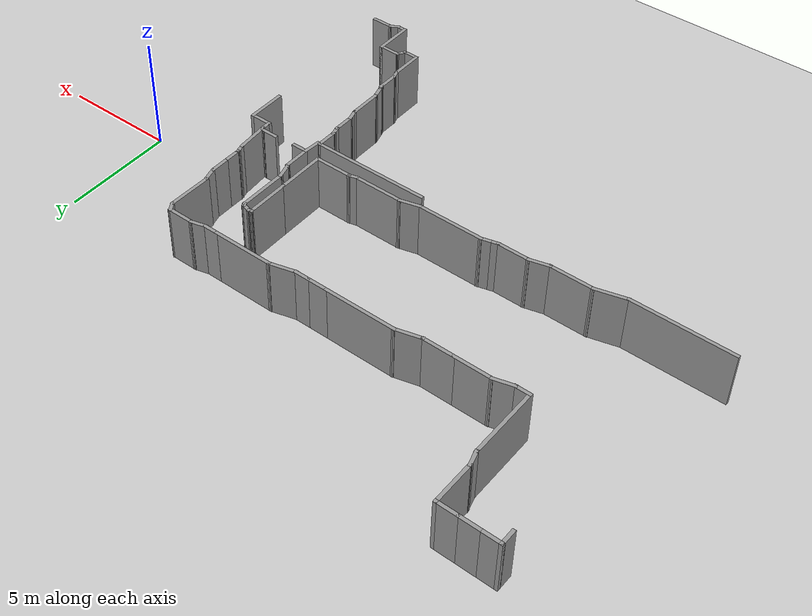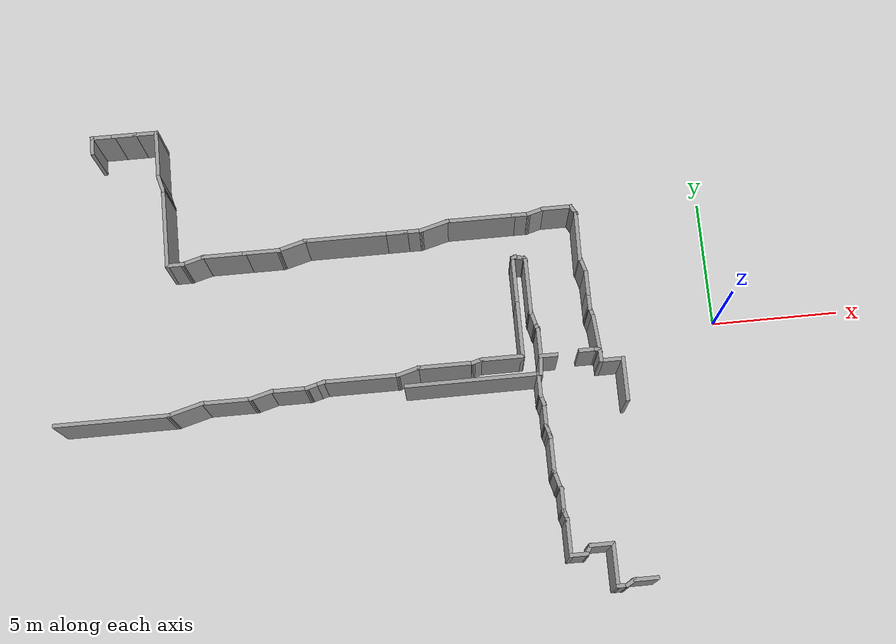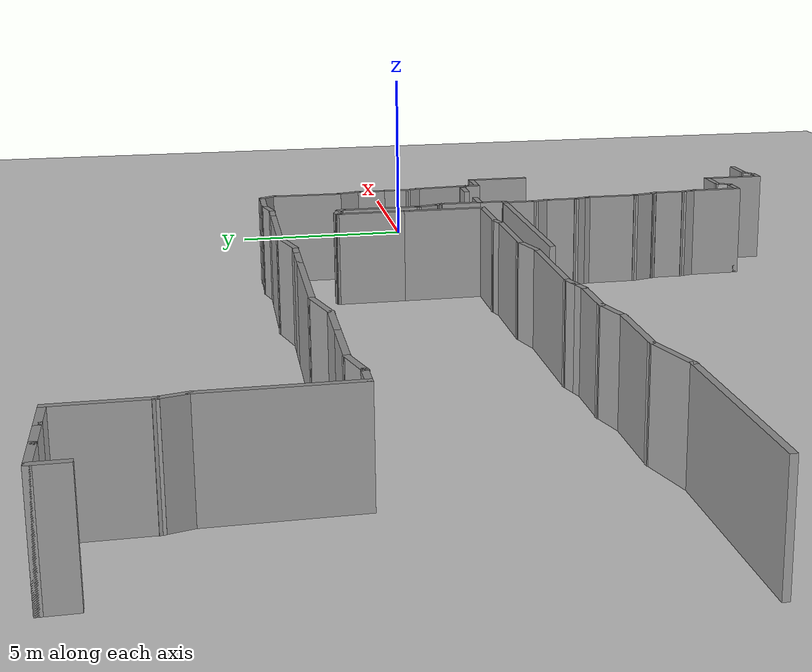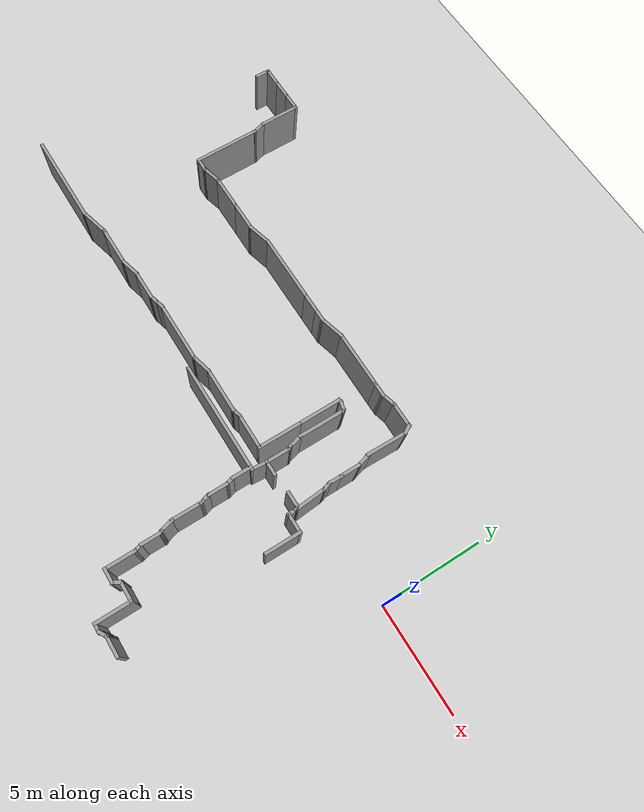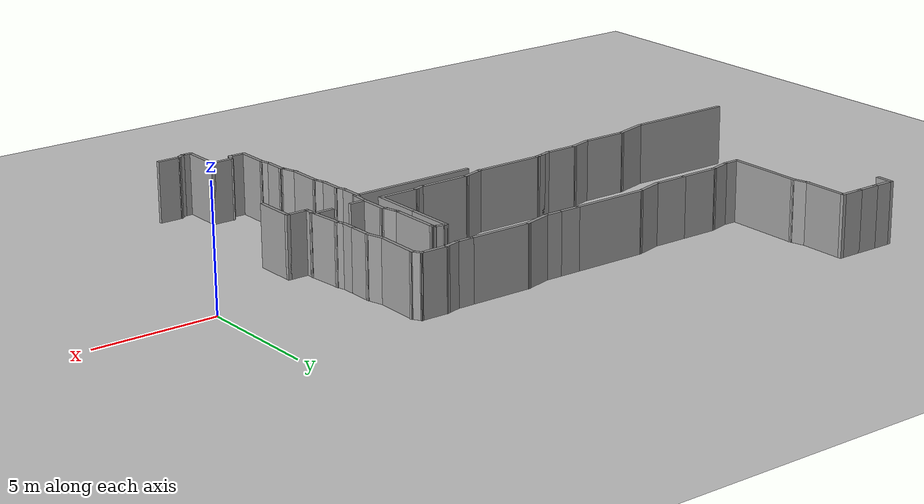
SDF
<sdf version="1.7">
 <world name="default">
  <model name="ground_plane">
   <static>1</static>
   <link name="link">
    <collision name="collision">
     <geometry><plane><normal>0 0 1</normal><size>100 100</size></plane></geometry>
     <surface><friction><ode><mu>100</mu><mu2>50</mu2></ode></friction></surface>
    </collision>
    <visual name="visual">
     <cast_shadows>0</cast_shadows>
     <geometry><plane><normal>0 0 1</normal><size>100 100</size></plane></geometry>
     <material>
      <script><uri>file://media/materials/scripts/gazebo.material</uri><name>Gazebo/Grey</name></script>
     </material>
    </visual>
   </link>
  </model>
  <model name="robovisor_env2">
   <pose>-12.9435 -0.483334 0 0 -0 3.14</pose>
   <link name="Wall_101">
    <collision name="Wall_101_Collision">
     <geometry><box><size>0.25 0.15 2.5</size></box></geometry>
     <pose>0 0 1.25 0 -0 0</pose>
    </collision>
    <visual name="Wall_101_Visual">
     <pose>0 0 1.25 0 -0 0</pose>
     <geometry><box><size>0.25 0.15 2.5</size></box></geometry>
     <material>
      <script><uri>file://media/materials/scripts/gazebo.material</uri><name>Gazebo/Grey</name></script>
      <ambient>1 1 1 1</ambient>
     </material>
     <meta><layer>0</layer></meta>
    </visual>
    <pose>-5.62434 1.40609 0 0 -0 3.14159</pose>
   </link>
   <link name="Wall_105">
    <collision name="Wall_105_Collision">
     <geometry><box><size>0.75 0.15 2.5</size></box></geometry>
     <pose>0 0 1.25 0 -0 0</pose>
    </collision>
    <visual name="Wall_105_Visual">
     <pose>0 0 1.25 0 -0 0</pose>
     <geometry><box><size>0.75 0.15 2.5</size></box></geometry>
     <material>
      <script><uri>file://media/materials/scripts/gazebo.material</uri><name>Gazebo/Grey</name></script>
      <ambient>1 1 1 1</ambient>
     </material>
     <meta><layer>0</layer></meta>
    </visual>
    <pose>-6.03532 0.716268 0 0 -0 0</pose>
   </link>
   <link name="Wall_110">
    <collision name="Wall_110_Collision">
     <geometry><box><size>0.842512 0.15 2.5</size></box></geometry>
     <pose>0 0 1.25 0 -0 0</pose>
    </collision>
    <visual name="Wall_110_Visual">
     <pose>0 0 1.25 0 -0 0</pose>
     <geometry><box><size>0.842512 0.15 2.5</size></box></geometry>
     <material>
      <script><uri>file://media/materials/scripts/gazebo.material</uri><name>Gazebo/Grey</name></script>
      <ambient>1 1 1 1</ambient>
     </material>
     <meta><layer>0</layer></meta>
    </visual>
    <pose>-5.70483 1.06118 0 0 -0 1.48262</pose>
   </link>
   <link name="Wall_112">
    <collision name="Wall_112_Collision">
     <geometry><box><size>0.75 0.15 2.5</size></box></geometry>
     <pose>0 0 1.25 0 -0 0</pose>
    </collision>
    <visual name="Wall_112_Visual">
     <pose>0 0 1.25 0 -0 0</pose>
     <geometry><box><size>0.75 0.15 2.5</size></box></geometry>
     <material>
      <script><uri>file://media/materials/scripts/gazebo.material</uri><name>Gazebo/Grey</name></script>
      <ambient>1 1 1 1</ambient>
     </material>
     <meta><layer>0</layer></meta>
    </visual>
    <pose>-7.58545 0.639279 0 0 -0 3.14159</pose>
   </link>
   <link name="Wall_113">
    <collision name="Wall_113_Collision">
     <geometry><box><size>0.25 0.15 2.5</size></box></geometry>
     <pose>0 0 1.25 0 -0 0</pose>
    </collision>
    <visual name="Wall_113_Visual">
     <pose>0 0 1.25 0 -0 0</pose>
     <geometry><box><size>0.25 0.15 2.5</size></box></geometry>
     <material>
      <script><uri>file://media/materials/scripts/gazebo.material</uri><name>Gazebo/Grey</name></script>
      <ambient>1 1 1 1</ambient>
     </material>
     <meta><layer>0</layer></meta>
    </visual>
    <pose>-7.93375 0.65222 0 0 -0 2.87979</pose>
   </link>
   <link name="Wall_114">
    <collision name="Wall_114_Collision">
     <geometry><box><size>0.25 0.15 2.5</size></box></geometry>
     <pose>0 0 1.25 0 -0 0</pose>
    </collision>
    <visual name="Wall_114_Visual">
     <pose>0 0 1.25 0 -0 0</pose>
     <geometry><box><size>0.25 0.15 2.5</size></box></geometry>
     <material>
      <script><uri>file://media/materials/scripts/gazebo.material</uri><name>Gazebo/Grey</name></script>
      <ambient>1 1 1 1</ambient>
     </material>
     <meta><layer>0</layer></meta>
    </visual>
    <pose>-8.00704 0.708463 0 0 -0 2.0944</pose>
   </link>
   <link name="Wall_115">
    <collision name="Wall_115_Collision">
     <geometry><box><size>0.5 0.15 2.5</size></box></geometry>
     <pose>0 0 1.25 0 -0 0</pose>
    </collision>
    <visual name="Wall_115_Visual">
     <pose>0 0 1.25 0 -0 0</pose>
     <geometry><box><size>0.5 0.15 2.5</size></box></geometry>
     <material>
      <script><uri>file://media/materials/scripts/gazebo.material</uri><name>Gazebo/Grey</name></script>
      <ambient>1 1 1 1</ambient>
     </material>
     <meta><layer>0</layer></meta>
    </visual>
    <pose>-8.03204 0.926764 0 0 -0 1.5708</pose>
   </link>
   <link name="Wall_116">
    <collision name="Wall_116_Collision">
     <geometry><box><size>1 0.15 2.5</size></box></geometry>
     <pose>0 0 1.25 0 -0 0</pose>
    </collision>
    <visual name="Wall_116_Visual">
     <pose>0 0 1.25 0 -0 0</pose>
     <geometry><box><size>1 0.15 2.5</size></box></geometry>
     <material>
      <script><uri>file://media/materials/scripts/gazebo.material</uri><name>Gazebo/Grey</name></script>
      <ambient>1 1 1 1</ambient>
     </material>
     <meta><layer>0</layer></meta>
    </visual>
    <pose>-8.45704 1.10176 0 0 -0 3.14159</pose>
   </link>
   <link name="Wall_117">
    <collision name="Wall_117_Collision">
     <geometry><box><size>1.75 0.15 2.5</size></box></geometry>
     <pose>0 0 1.25 0 -0 0</pose>
    </collision>
    <visual name="Wall_117_Visual">
     <pose>0 0 1.25 0 -0 0</pose>
     <geometry><box><size>1.75 0.15 2.5</size></box></geometry>
     <material>
      <script><uri>file://media/materials/scripts/gazebo.material</uri><name>Gazebo/Grey</name></script>
      <ambient>1 1 1 1</ambient>
     </material>
     <meta><layer>0</layer></meta>
    </visual>
    <pose>-8.88204 1.90176 0 0 -0 1.5708</pose>
   </link>
   <link name="Wall_151">
    <collision name="Wall_151_Collision">
     <geometry><box><size>1.25 0.15 2.5</size></box></geometry>
     <pose>0 0 1.25 0 -0 0</pose>
    </collision>
    <visual name="Wall_151_Visual">
     <pose>0 0 1.25 0 -0 0</pose>
     <geometry><box><size>1.25 0.15 2.5</size></box></geometry>
     <material>
      <script><uri>file://media/materials/scripts/gazebo.material</uri><name>Gazebo/Grey</name></script>
      <ambient>1 1 1 1</ambient>
     </material>
     <meta><layer>0</layer></meta>
    </visual>
    <pose>-5.73532 0.166268 0 0 -0 -1.5708</pose>
   </link>
   <link name="Wall_152">
    <collision name="Wall_152_Collision">
     <geometry><box><size>0.25 0.15 2.5</size></box></geometry>
     <pose>0 0 1.25 0 -0 0</pose>
    </collision>
    <visual name="Wall_152_Visual">
     <pose>0 0 1.25 0 -0 0</pose>
     <geometry><box><size>0.25 0.15 2.5</size></box></geometry>
     <material>
      <script><uri>file://media/materials/scripts/gazebo.material</uri><name>Gazebo/Grey</name></script>
      <ambient>1 1 1 1</ambient>
     </material>
     <meta><layer>0</layer></meta>
    </visual>
    <pose>-5.71032 -0.427033 0 0 -0 -1.0472</pose>
   </link>
   <link name="Wall_153">
    <collision name="Wall_153_Collision">
     <geometry><box><size>0.75 0.15 2.5</size></box></geometry>
     <pose>0 0 1.25 0 -0 0</pose>
    </collision>
    <visual name="Wall_153_Visual">
     <pose>0 0 1.25 0 -0 0</pose>
     <geometry><box><size>0.75 0.15 2.5</size></box></geometry>
     <material>
      <script><uri>file://media/materials/scripts/gazebo.material</uri><name>Gazebo/Grey</name></script>
      <ambient>1 1 1 1</ambient>
     </material>
     <meta><layer>0</layer></meta>
    </visual>
    <pose>-5.60768 -0.760112 0 0 -0 -1.309</pose>
   </link>
   <link name="Wall_154">
    <collision name="Wall_154_Collision">
     <geometry><box><size>2.25 0.15 2.5</size></box></geometry>
     <pose>0 0 1.25 0 -0 0</pose>
    </collision>
    <visual name="Wall_154_Visual">
     <pose>0 0 1.25 0 -0 0</pose>
     <geometry><box><size>2.25 0.15 2.5</size></box></geometry>
     <material>
      <script><uri>file://media/materials/scripts/gazebo.material</uri><name>Gazebo/Grey</name></script>
      <ambient>1 1 1 1</ambient>
     </material>
     <meta><layer>0</layer></meta>
    </visual>
    <pose>-5.53003 -2.09989 0 0 -0 -1.5708</pose>
   </link>
   <link name="Wall_155">
    <collision name="Wall_155_Collision">
     <geometry><box><size>0.25 0.15 2.5</size></box></geometry>
     <pose>0 0 1.25 0 -0 0</pose>
    </collision>
    <visual name="Wall_155_Visual">
     <pose>0 0 1.25 0 -0 0</pose>
     <geometry><box><size>0.25 0.15 2.5</size></box></geometry>
     <material>
      <script><uri>file://media/materials/scripts/gazebo.material</uri><name>Gazebo/Grey</name></script>
      <ambient>1 1 1 1</ambient>
     </material>
     <meta><layer>0</layer></meta>
    </visual>
    <pose>-5.50503 -3.19319 0 0 -0 -1.0472</pose>
   </link>
   <link name="Wall_156">
    <collision name="Wall_156_Collision">
     <geometry><box><size>0.5 0.15 2.5</size></box></geometry>
     <pose>0 0 1.25 0 -0 0</pose>
    </collision>
    <visual name="Wall_156_Visual">
     <pose>0 0 1.25 0 -0 0</pose>
     <geometry><box><size>0.5 0.15 2.5</size></box></geometry>
     <material>
      <script><uri>file://media/materials/scripts/gazebo.material</uri><name>Gazebo/Grey</name></script>
      <ambient>1 1 1 1</ambient>
     </material>
     <meta><layer>0</layer></meta>
    </visual>
    <pose>-5.311 -3.28179 0 0 -0 -0.261799</pose>
   </link>
   <link name="Wall_157">
    <collision name="Wall_157_Collision">
     <geometry><box><size>0.25 0.15 2.5</size></box></geometry>
     <pose>0 0 1.25 0 -0 0</pose>
    </collision>
    <visual name="Wall_157_Visual">
     <pose>0 0 1.25 0 -0 0</pose>
     <geometry><box><size>0.25 0.15 2.5</size></box></geometry>
     <material>
      <script><uri>file://media/materials/scripts/gazebo.material</uri><name>Gazebo/Grey</name></script>
      <ambient>1 1 1 1</ambient>
     </material>
     <meta><layer>0</layer></meta>
    </visual>
    <pose>-5.09366 -3.31414 0 0 -0 0.261799</pose>
   </link>
   <link name="Wall_158">
    <collision name="Wall_158_Collision">
     <geometry><box><size>0.15 0.15 2.5</size></box></geometry>
     <pose>0 0 1.25 0 -0 0</pose>
    </collision>
    <visual name="Wall_158_Visual">
     <pose>0 0 1.25 0 -0 0</pose>
     <geometry><box><size>0.15 0.15 2.5</size></box></geometry>
     <material>
      <script><uri>file://media/materials/scripts/gazebo.material</uri><name>Gazebo/Grey</name></script>
      <ambient>1 1 1 1</ambient>
     </material>
     <meta><layer>0</layer></meta>
    </visual>
    <pose>-5.04537 -3.3012 0 0 -0 0</pose>
   </link>
   <link name="Wall_159">
    <collision name="Wall_159_Collision">
     <geometry><box><size>0.15 0.15 2.5</size></box></geometry>
     <pose>0 0 1.25 0 -0 0</pose>
    </collision>
    <visual name="Wall_159_Visual">
     <pose>0 0 1.25 0 -0 0</pose>
     <geometry><box><size>0.15 0.15 2.5</size></box></geometry>
     <material>
      <script><uri>file://media/materials/scripts/gazebo.material</uri><name>Gazebo/Grey</name></script>
      <ambient>1 1 1 1</ambient>
     </material>
     <meta><layer>0</layer></meta>
    </visual>
    <pose>-5.04537 -3.3012 0 0 -0 0</pose>
   </link>
   <link name="Wall_160">
    <collision name="Wall_160_Collision">
     <geometry><box><size>2 0.15 2.5</size></box></geometry>
     <pose>0 0 1.25 0 -0 0</pose>
    </collision>
    <visual name="Wall_160_Visual">
     <pose>0 0 1.25 0 -0 0</pose>
     <geometry><box><size>2 0.15 2.5</size></box></geometry>
     <material>
      <script><uri>file://media/materials/scripts/gazebo.material</uri><name>Gazebo/Grey</name></script>
      <ambient>1 1 1 1</ambient>
     </material>
     <meta><layer>0</layer></meta>
    </visual>
    <pose>-5.04537 -2.3762 0 0 -0 1.5708</pose>
   </link>
   <link name="Wall_161">
    <collision name="Wall_161_Collision">
     <geometry><box><size>2.25 0.15 2.5</size></box></geometry>
     <pose>0 0 1.25 0 -0 0</pose>
    </collision>
    <visual name="Wall_161_Visual">
     <pose>0 0 1.25 0 -0 0</pose>
     <geometry><box><size>2.25 0.15 2.5</size></box></geometry>
     <material>
      <script><uri>file://media/materials/scripts/gazebo.material</uri><name>Gazebo/Grey</name></script>
      <ambient>1 1 1 1</ambient>
     </material>
     <meta><layer>0</layer></meta>
    </visual>
    <pose>-5.04537 -0.401197 0 0 -0 1.5708</pose>
   </link>
   <link name="Wall_162">
    <collision name="Wall_162_Collision">
     <geometry><box><size>1.75 0.15 2.5</size></box></geometry>
     <pose>0 0 1.25 0 -0 0</pose>
    </collision>
    <visual name="Wall_162_Visual">
     <pose>0 0 1.25 0 -0 0</pose>
     <geometry><box><size>1.75 0.15 2.5</size></box></geometry>
     <material>
      <script><uri>file://media/materials/scripts/gazebo.material</uri><name>Gazebo/Grey</name></script>
      <ambient>1 1 1 1</ambient>
     </material>
     <meta><layer>0</layer></meta>
    </visual>
    <pose>-4.24536 0.648803 0 0 -0 0</pose>
   </link>
   <link name="Wall_163">
    <collision name="Wall_163_Collision">
     <geometry><box><size>0.5 0.15 2.5</size></box></geometry>
     <pose>0 0 1.25 0 -0 0</pose>
    </collision>
    <visual name="Wall_163_Visual">
     <pose>0 0 1.25 0 -0 0</pose>
     <geometry><box><size>0.5 0.15 2.5</size></box></geometry>
     <material>
      <script><uri>file://media/materials/scripts/gazebo.material</uri><name>Gazebo/Grey</name></script>
      <ambient>1 1 1 1</ambient>
     </material>
     <meta><layer>0</layer></meta>
    </visual>
    <pose>-3.27633 0.694096 0 0 -0 0.261799</pose>
   </link>
   <link name="Wall_164">
    <collision name="Wall_164_Collision">
     <geometry><box><size>2.25 0.15 2.5</size></box></geometry>
     <pose>0 0 1.25 0 -0 0</pose>
    </collision>
    <visual name="Wall_164_Visual">
     <pose>0 0 1.25 0 -0 0</pose>
     <geometry><box><size>2.25 0.15 2.5</size></box></geometry>
     <material>
      <script><uri>file://media/materials/scripts/gazebo.material</uri><name>Gazebo/Grey</name></script>
      <ambient>1 1 1 1</ambient>
     </material>
     <meta><layer>0</layer></meta>
    </visual>
    <pose>-2.05729 0.73939 0 0 -0 0</pose>
   </link>
   <link name="Wall_165">
    <collision name="Wall_165_Collision">
     <geometry><box><size>1 0.15 2.5</size></box></geometry>
     <pose>0 0 1.25 0 -0 0</pose>
    </collision>
    <visual name="Wall_165_Visual">
     <pose>0 0 1.25 0 -0 0</pose>
     <geometry><box><size>1 0.15 2.5</size></box></geometry>
     <material>
      <script><uri>file://media/materials/scripts/gazebo.material</uri><name>Gazebo/Grey</name></script>
      <ambient>1 1 1 1</ambient>
     </material>
     <meta><layer>0</layer></meta>
    </visual>
    <pose>-0.596773 0.849388 0 0 -0 0.261799</pose>
   </link>
   <link name="Wall_166">
    <collision name="Wall_166_Collision">
     <geometry><box><size>3 0.15 2.5</size></box></geometry>
     <pose>0 0 1.25 0 -0 0</pose>
    </collision>
    <visual name="Wall_166_Visual">
     <pose>0 0 1.25 0 -0 0</pose>
     <geometry><box><size>3 0.15 2.5</size></box></geometry>
     <material>
      <script><uri>file://media/materials/scripts/gazebo.material</uri><name>Gazebo/Grey</name></script>
      <ambient>1 1 1 1</ambient>
     </material>
     <meta><layer>0</layer></meta>
    </visual>
    <pose>1.23875 0.959386 0 0 -0 0</pose>
   </link>
   <link name="Wall_167">
    <collision name="Wall_167_Collision">
     <geometry><box><size>0.5 0.15 2.5</size></box></geometry>
     <pose>0 0 1.25 0 -0 0</pose>
    </collision>
    <visual name="Wall_167_Visual">
     <pose>0 0 1.25 0 -0 0</pose>
     <geometry><box><size>0.5 0.15 2.5</size></box></geometry>
     <material>
      <script><uri>file://media/materials/scripts/gazebo.material</uri><name>Gazebo/Grey</name></script>
      <ambient>1 1 1 1</ambient>
     </material>
     <meta><layer>0</layer></meta>
    </visual>
    <pose>2.83278 1.00468 0 0 -0 0.261799</pose>
   </link>
   <link name="Wall_168">
    <collision name="Wall_168_Collision">
     <geometry><box><size>0.5 0.15 2.5</size></box></geometry>
     <pose>0 0 1.25 0 -0 0</pose>
    </collision>
    <visual name="Wall_168_Visual">
     <pose>0 0 1.25 0 -0 0</pose>
     <geometry><box><size>0.5 0.15 2.5</size></box></geometry>
     <material>
      <script><uri>file://media/materials/scripts/gazebo.material</uri><name>Gazebo/Grey</name></script>
      <ambient>1 1 1 1</ambient>
     </material>
     <meta><layer>0</layer></meta>
    </visual>
    <pose>3.17086 1.09527 0 0 -0 0.261799</pose>
   </link>
   <link name="Wall_169">
    <collision name="Wall_169_Collision">
     <geometry><box><size>1.5 0.15 2.5</size></box></geometry>
     <pose>0 0 1.25 0 -0 0</pose>
    </collision>
    <visual name="Wall_169_Visual">
     <pose>0 0 1.25 0 -0 0</pose>
     <geometry><box><size>1.5 0.15 2.5</size></box></geometry>
     <material>
      <script><uri>file://media/materials/scripts/gazebo.material</uri><name>Gazebo/Grey</name></script>
      <ambient>1 1 1 1</ambient>
     </material>
     <meta><layer>0</layer></meta>
    </visual>
    <pose>4.01489 1.14056 0 0 -0 0</pose>
   </link>
   <link name="Wall_171">
    <collision name="Wall_171_Collision">
     <geometry><box><size>1 0.15 2.5</size></box></geometry>
     <pose>0 0 1.25 0 -0 0</pose>
    </collision>
    <visual name="Wall_171_Visual">
     <pose>0 0 1.25 0 -0 0</pose>
     <geometry><box><size>1 0.15 2.5</size></box></geometry>
     <material>
      <script><uri>file://media/materials/scripts/gazebo.material</uri><name>Gazebo/Grey</name></script>
      <ambient>1 1 1 1</ambient>
     </material>
     <meta><layer>0</layer></meta>
    </visual>
    <pose>5.10041 1.25056 0 0 -0 0.261799</pose>
   </link>
   <link name="Wall_172">
    <collision name="Wall_172_Collision">
     <geometry><box><size>2 0.15 2.5</size></box></geometry>
     <pose>0 0 1.25 0 -0 0</pose>
    </collision>
    <visual name="Wall_172_Visual">
     <pose>0 0 1.25 0 -0 0</pose>
     <geometry><box><size>2 0.15 2.5</size></box></geometry>
     <material>
      <script><uri>file://media/materials/scripts/gazebo.material</uri><name>Gazebo/Grey</name></script>
      <ambient>1 1 1 1</ambient>
     </material>
     <meta><layer>0</layer></meta>
    </visual>
    <pose>6.43593 1.36055 0 0 -0 0</pose>
   </link>
   <link name="Wall_173">
    <collision name="Wall_173_Collision">
     <geometry><box><size>1.5 0.15 2.5</size></box></geometry>
     <pose>0 0 1.25 0 -0 0</pose>
    </collision>
    <visual name="Wall_173_Visual">
     <pose>0 0 1.25 0 -0 0</pose>
     <geometry><box><size>1.5 0.15 2.5</size></box></geometry>
     <material>
      <script><uri>file://media/materials/scripts/gazebo.material</uri><name>Gazebo/Grey</name></script>
      <ambient>1 1 1 1</ambient>
     </material>
     <meta><layer>0</layer></meta>
    </visual>
    <pose>8.01293 1.53526 0 0 -0 0.261799</pose>
   </link>
   <link name="Wall_174">
    <collision name="Wall_174_Collision">
     <geometry><box><size>4.5 0.15 2.5</size></box></geometry>
     <pose>0 0 1.25 0 -0 0</pose>
    </collision>
    <visual name="Wall_174_Visual">
     <pose>0 0 1.25 0 -0 0</pose>
     <geometry><box><size>4.5 0.15 2.5</size></box></geometry>
     <material>
      <script><uri>file://media/materials/scripts/gazebo.material</uri><name>Gazebo/Grey</name></script>
      <ambient>1 1 1 1</ambient>
     </material>
     <meta><layer>0</layer></meta>
    </visual>
    <pose>10.8399 1.70996 0 0 -0 0</pose>
   </link>
   <link name="Wall_276">
    <collision name="Wall_276_Collision">
     <geometry><box><size>0.75 0.15 2.5</size></box></geometry>
     <pose>0 0 1.25 0 -0 0</pose>
    </collision>
    <visual name="Wall_276_Visual">
     <pose>0 0 1.25 0 -0 0</pose>
     <geometry><box><size>0.75 0.15 2.5</size></box></geometry>
     <material>
      <script><uri>file://media/materials/scripts/gazebo.material</uri><name>Gazebo/Grey</name></script>
      <ambient>1 1 1 1</ambient>
     </material>
     <meta><layer>0</layer></meta>
    </visual>
    <pose>11.113 -9.46316 0 0 -0 -1.5708</pose>
   </link>
   <link name="Wall_277">
    <collision name="Wall_277_Collision">
     <geometry><box><size>0.15 0.15 2.5</size></box></geometry>
     <pose>0 0 1.25 0 -0 0</pose>
    </collision>
    <visual name="Wall_277_Visual">
     <pose>0 0 1.25 0 -0 0</pose>
     <geometry><box><size>0.15 0.15 2.5</size></box></geometry>
     <material>
      <script><uri>file://media/materials/scripts/gazebo.material</uri><name>Gazebo/Grey</name></script>
      <ambient>1 1 1 1</ambient>
     </material>
     <meta><layer>0</layer></meta>
    </visual>
    <pose>11.113 -9.76315 0 0 -0 0</pose>
   </link>
   <link name="Wall_278">
    <collision name="Wall_278_Collision">
     <geometry><box><size>1 0.15 2.5</size></box></geometry>
     <pose>0 0 1.25 0 -0 0</pose>
    </collision>
    <visual name="Wall_278_Visual">
     <pose>0 0 1.25 0 -0 0</pose>
     <geometry><box><size>1 0.15 2.5</size></box></geometry>
     <material>
      <script><uri>file://media/materials/scripts/gazebo.material</uri><name>Gazebo/Grey</name></script>
      <ambient>1 1 1 1</ambient>
     </material>
     <meta><layer>0</layer></meta>
    </visual>
    <pose>10.688 -9.76315 0 0 -0 3.14159</pose>
   </link>
   <link name="Wall_279">
    <collision name="Wall_279_Collision">
     <geometry><box><size>1 0.15 2.5</size></box></geometry>
     <pose>0 0 1.25 0 -0 0</pose>
    </collision>
    <visual name="Wall_279_Visual">
     <pose>0 0 1.25 0 -0 0</pose>
     <geometry><box><size>1 0.15 2.5</size></box></geometry>
     <material>
      <script><uri>file://media/materials/scripts/gazebo.material</uri><name>Gazebo/Grey</name></script>
      <ambient>1 1 1 1</ambient>
     </material>
     <meta><layer>0</layer></meta>
    </visual>
    <pose>9.83799 -9.76315 0 0 -0 3.14159</pose>
   </link>
   <link name="Wall_280">
    <collision name="Wall_280_Collision">
     <geometry><box><size>1 0.15 2.5</size></box></geometry>
     <pose>0 0 1.25 0 -0 0</pose>
    </collision>
    <visual name="Wall_280_Visual">
     <pose>0 0 1.25 0 -0 0</pose>
     <geometry><box><size>1 0.15 2.5</size></box></geometry>
     <material>
      <script><uri>file://media/materials/scripts/gazebo.material</uri><name>Gazebo/Grey</name></script>
      <ambient>1 1 1 1</ambient>
     </material>
     <meta><layer>0</layer></meta>
    </visual>
    <pose>8.98799 -9.76315 0 0 -0 3.14159</pose>
   </link>
   <link name="Wall_281">
    <collision name="Wall_281_Collision">
     <geometry><box><size>2 0.15 2.5</size></box></geometry>
     <pose>0 0 1.25 0 -0 0</pose>
    </collision>
    <visual name="Wall_281_Visual">
     <pose>0 0 1.25 0 -0 0</pose>
     <geometry><box><size>2 0.15 2.5</size></box></geometry>
     <material>
      <script><uri>file://media/materials/scripts/gazebo.material</uri><name>Gazebo/Grey</name></script>
      <ambient>1 1 1 1</ambient>
     </material>
     <meta><layer>0</layer></meta>
    </visual>
    <pose>8.56299 -8.83816 0 0 -0 1.5708</pose>
   </link>
   <link name="Wall_282">
    <collision name="Wall_282_Collision">
     <geometry><box><size>0.75 0.15 2.5</size></box></geometry>
     <pose>0 0 1.25 0 -0 0</pose>
    </collision>
    <visual name="Wall_282_Visual">
     <pose>0 0 1.25 0 -0 0</pose>
     <geometry><box><size>0.75 0.15 2.5</size></box></geometry>
     <material>
      <script><uri>file://media/materials/scripts/gazebo.material</uri><name>Gazebo/Grey</name></script>
      <ambient>1 1 1 1</ambient>
     </material>
     <meta><layer>0</layer></meta>
    </visual>
    <pose>8.48534 -7.62338 0 0 -0 1.8326</pose>
   </link>
   <link name="Wall_283">
    <collision name="Wall_283_Collision">
     <geometry><box><size>3.25 0.15 2.5</size></box></geometry>
     <pose>0 0 1.25 0 -0 0</pose>
    </collision>
    <visual name="Wall_283_Visual">
     <pose>0 0 1.25 0 -0 0</pose>
     <geometry><box><size>3.25 0.15 2.5</size></box></geometry>
     <material>
      <script><uri>file://media/materials/scripts/gazebo.material</uri><name>Gazebo/Grey</name></script>
      <ambient>1 1 1 1</ambient>
     </material>
     <meta><layer>0</layer></meta>
    </visual>
    <pose>8.4077 -5.7836 0 0 -0 1.5708</pose>
   </link>
   <link name="Wall_284">
    <collision name="Wall_284_Collision">
     <geometry><box><size>0.75 0.15 2.5</size></box></geometry>
     <pose>0 0 1.25 0 -0 0</pose>
    </collision>
    <visual name="Wall_284_Visual">
     <pose>0 0 1.25 0 -0 0</pose>
     <geometry><box><size>0.75 0.15 2.5</size></box></geometry>
     <material>
      <script><uri>file://media/materials/scripts/gazebo.material</uri><name>Gazebo/Grey</name></script>
      <ambient>1 1 1 1</ambient>
     </material>
     <meta><layer>0</layer></meta>
    </visual>
    <pose>8.10769 -4.2336 0 0 -0 3.14159</pose>
   </link>
   <link name="Wall_285">
    <collision name="Wall_285_Collision">
     <geometry><box><size>1 0.15 2.5</size></box></geometry>
     <pose>0 0 1.25 0 -0 0</pose>
    </collision>
    <visual name="Wall_285_Visual">
     <pose>0 0 1.25 0 -0 0</pose>
     <geometry><box><size>1 0.15 2.5</size></box></geometry>
     <material>
      <script><uri>file://media/materials/scripts/gazebo.material</uri><name>Gazebo/Grey</name></script>
      <ambient>1 1 1 1</ambient>
     </material>
     <meta><layer>0</layer></meta>
    </visual>
    <pose>7.39718 -4.3436 0 0 -0 -2.87979</pose>
   </link>
   <link name="Wall_286">
    <collision name="Wall_286_Collision">
     <geometry><box><size>1.75 0.15 2.5</size></box></geometry>
     <pose>0 0 1.25 0 -0 0</pose>
    </collision>
    <visual name="Wall_286_Visual">
     <pose>0 0 1.25 0 -0 0</pose>
     <geometry><box><size>1.75 0.15 2.5</size></box></geometry>
     <material>
      <script><uri>file://media/materials/scripts/gazebo.material</uri><name>Gazebo/Grey</name></script>
      <ambient>1 1 1 1</ambient>
     </material>
     <meta><layer>0</layer></meta>
    </visual>
    <pose>6.18666 -4.4536 0 0 -0 3.14159</pose>
   </link>
   <link name="Wall_288">
    <collision name="Wall_288_Collision">
     <geometry><box><size>1.5 0.15 2.5</size></box></geometry>
     <pose>0 0 1.25 0 -0 0</pose>
    </collision>
    <visual name="Wall_288_Visual">
     <pose>0 0 1.25 0 -0 0</pose>
     <geometry><box><size>1.5 0.15 2.5</size></box></geometry>
     <material>
      <script><uri>file://media/materials/scripts/gazebo.material</uri><name>Gazebo/Grey</name></script>
      <ambient>1 1 1 1</ambient>
     </material>
     <meta><layer>0</layer></meta>
    </visual>
    <pose>4.71166 -4.4536 0 0 -0 3.14159</pose>
   </link>
   <link name="Wall_289">
    <collision name="Wall_289_Collision">
     <geometry><box><size>1.25 0.15 2.5</size></box></geometry>
     <pose>0 0 1.25 0 -0 0</pose>
    </collision>
    <visual name="Wall_289_Visual">
     <pose>0 0 1.25 0 -0 0</pose>
     <geometry><box><size>1.25 0.15 2.5</size></box></geometry>
     <material>
      <script><uri>file://media/materials/scripts/gazebo.material</uri><name>Gazebo/Grey</name></script>
      <ambient>1 1 1 1</ambient>
     </material>
     <meta><layer>0</layer></meta>
    </visual>
    <pose>3.5054 -4.59595 0 0 -0 -2.87979</pose>
   </link>
   <link name="Wall_290">
    <collision name="Wall_290_Collision">
     <geometry><box><size>3.25 0.15 2.5</size></box></geometry>
     <pose>0 0 1.25 0 -0 0</pose>
    </collision>
    <visual name="Wall_290_Visual">
     <pose>0 0 1.25 0 -0 0</pose>
     <geometry><box><size>3.25 0.15 2.5</size></box></geometry>
     <material>
      <script><uri>file://media/materials/scripts/gazebo.material</uri><name>Gazebo/Grey</name></script>
      <ambient>1 1 1 1</ambient>
     </material>
     <meta><layer>0</layer></meta>
    </visual>
    <pose>1.42414 -4.7383 0 0 -0 3.14159</pose>
   </link>
   <link name="Wall_291">
    <collision name="Wall_291_Collision">
     <geometry><box><size>1 0.15 2.5</size></box></geometry>
     <pose>0 0 1.25 0 -0 0</pose>
    </collision>
    <visual name="Wall_291_Visual">
     <pose>0 0 1.25 0 -0 0</pose>
     <geometry><box><size>1 0.15 2.5</size></box></geometry>
     <material>
      <script><uri>file://media/materials/scripts/gazebo.material</uri><name>Gazebo/Grey</name></script>
      <ambient>1 1 1 1</ambient>
     </material>
     <meta><layer>0</layer></meta>
    </visual>
    <pose>-0.55086 -4.7383 0 0 -0 3.14159</pose>
   </link>
   <link name="Wall_292">
    <collision name="Wall_292_Collision">
     <geometry><box><size>0.75 0.15 2.5</size></box></geometry>
     <pose>0 0 1.25 0 -0 0</pose>
    </collision>
    <visual name="Wall_292_Visual">
     <pose>0 0 1.25 0 -0 0</pose>
     <geometry><box><size>0.75 0.15 2.5</size></box></geometry>
     <material>
      <script><uri>file://media/materials/scripts/gazebo.material</uri><name>Gazebo/Grey</name></script>
      <ambient>1 1 1 1</ambient>
     </material>
     <meta><layer>0</layer></meta>
    </visual>
    <pose>-1.27586 -4.7383 0 0 -0 3.14159</pose>
   </link>
   <link name="Wall_293">
    <collision name="Wall_293_Collision">
     <geometry><box><size>1.25 0.15 2.5</size></box></geometry>
     <pose>0 0 1.25 0 -0 0</pose>
    </collision>
    <visual name="Wall_293_Visual">
     <pose>0 0 1.25 0 -0 0</pose>
     <geometry><box><size>1.25 0.15 2.5</size></box></geometry>
     <material>
      <script><uri>file://media/materials/scripts/gazebo.material</uri><name>Gazebo/Grey</name></script>
      <ambient>1 1 1 1</ambient>
     </material>
     <meta><layer>0</layer></meta>
    </visual>
    <pose>-2.10712 -4.88065 0 0 -0 -2.87979</pose>
   </link>
   <link name="Wall_294">
    <collision name="Wall_294_Collision">
     <geometry><box><size>2.75 0.15 2.5</size></box></geometry>
     <pose>0 0 1.25 0 -0 0</pose>
    </collision>
    <visual name="Wall_294_Visual">
     <pose>0 0 1.25 0 -0 0</pose>
     <geometry><box><size>2.75 0.15 2.5</size></box></geometry>
     <material>
      <script><uri>file://media/materials/scripts/gazebo.material</uri><name>Gazebo/Grey</name></script>
      <ambient>1 1 1 1</ambient>
     </material>
     <meta><layer>0</layer></meta>
    </visual>
    <pose>-3.93838 -5.023 0 0 -0 3.14159</pose>
   </link>
   <link name="Wall_295">
    <collision name="Wall_295_Collision">
     <geometry><box><size>0.75 0.15 2.5</size></box></geometry>
     <pose>0 0 1.25 0 -0 0</pose>
    </collision>
    <visual name="Wall_295_Visual">
     <pose>0 0 1.25 0 -0 0</pose>
     <geometry><box><size>0.75 0.15 2.5</size></box></geometry>
     <material>
      <script><uri>file://media/materials/scripts/gazebo.material</uri><name>Gazebo/Grey</name></script>
      <ambient>1 1 1 1</ambient>
     </material>
     <meta><layer>0</layer></meta>
    </visual>
    <pose>-5.53838 -5.023 0 0 -0 3.14159</pose>
   </link>
   <link name="Wall_296">
    <collision name="Wall_296_Collision">
     <geometry><box><size>0.75 0.15 2.5</size></box></geometry>
     <pose>0 0 1.25 0 -0 0</pose>
    </collision>
    <visual name="Wall_296_Visual">
     <pose>0 0 1.25 0 -0 0</pose>
     <geometry><box><size>0.75 0.15 2.5</size></box></geometry>
     <material>
      <script><uri>file://media/materials/scripts/gazebo.material</uri><name>Gazebo/Grey</name></script>
      <ambient>1 1 1 1</ambient>
     </material>
     <meta><layer>0</layer></meta>
    </visual>
    <pose>-6.12816 -5.10064 0 0 -0 -2.87979</pose>
   </link>
   <link name="Wall_297">
    <collision name="Wall_297_Collision">
     <geometry><box><size>1.25 0.15 2.5</size></box></geometry>
     <pose>0 0 1.25 0 -0 0</pose>
    </collision>
    <visual name="Wall_297_Visual">
     <pose>0 0 1.25 0 -0 0</pose>
     <geometry><box><size>1.25 0.15 2.5</size></box></geometry>
     <material>
      <script><uri>file://media/materials/scripts/gazebo.material</uri><name>Gazebo/Grey</name></script>
      <ambient>1 1 1 1</ambient>
     </material>
     <meta><layer>0</layer></meta>
    </visual>
    <pose>-6.96793 -5.17829 0 0 -0 3.14159</pose>
   </link>
   <link name="Wall_298">
    <collision name="Wall_298_Collision">
     <geometry><box><size>0.5 0.15 2.5</size></box></geometry>
     <pose>0 0 1.25 0 -0 0</pose>
    </collision>
    <visual name="Wall_298_Visual">
     <pose>0 0 1.25 0 -0 0</pose>
     <geometry><box><size>0.5 0.15 2.5</size></box></geometry>
     <material>
      <script><uri>file://media/materials/scripts/gazebo.material</uri><name>Gazebo/Grey</name></script>
      <ambient>1 1 1 1</ambient>
     </material>
     <meta><layer>0</layer></meta>
    </visual>
    <pose>-7.60543 -5.02674 0 0 -0 2.0944</pose>
   </link>
   <link name="Wall_299">
    <collision name="Wall_299_Collision">
     <geometry><box><size>2 0.15 2.5</size></box></geometry>
     <pose>0 0 1.25 0 -0 0</pose>
    </collision>
    <visual name="Wall_299_Visual">
     <pose>0 0 1.25 0 -0 0</pose>
     <geometry><box><size>2 0.15 2.5</size></box></geometry>
     <material>
      <script><uri>file://media/materials/scripts/gazebo.material</uri><name>Gazebo/Grey</name></script>
      <ambient>1 1 1 1</ambient>
     </material>
     <meta><layer>0</layer></meta>
    </visual>
    <pose>-7.67293 -3.95018 0 0 -0 1.54918</pose>
   </link>
   <link name="Wall_300">
    <collision name="Wall_300_Collision">
     <geometry><box><size>0.75 0.15 2.5</size></box></geometry>
     <pose>0 0 1.25 0 -0 0</pose>
    </collision>
    <visual name="Wall_300_Visual">
     <pose>0 0 1.25 0 -0 0</pose>
     <geometry><box><size>0.75 0.15 2.5</size></box></geometry>
     <material>
      <script><uri>file://media/materials/scripts/gazebo.material</uri><name>Gazebo/Grey</name></script>
      <ambient>1 1 1 1</ambient>
     </material>
     <meta><layer>0</layer></meta>
    </visual>
    <pose>-7.75058 -2.7354 0 0 -0 1.8326</pose>
   </link>
   <link name="Wall_302">
    <collision name="Wall_302_Collision">
     <geometry><box><size>1 0.15 2.5</size></box></geometry>
     <pose>0 0 1.25 0 -0 0</pose>
    </collision>
    <visual name="Wall_302_Visual">
     <pose>0 0 1.25 0 -0 0</pose>
     <geometry><box><size>1 0.15 2.5</size></box></geometry>
     <material>
      <script><uri>file://media/materials/scripts/gazebo.material</uri><name>Gazebo/Grey</name></script>
      <ambient>1 1 1 1</ambient>
     </material>
     <meta><layer>0</layer></meta>
    </visual>
    <pose>-7.82823 -2.02062 0 0 -0 1.5708</pose>
   </link>
   <link name="Wall_303">
    <collision name="Wall_303_Collision">
     <geometry><box><size>0.75 0.15 2.5</size></box></geometry>
     <pose>0 0 1.25 0 -0 0</pose>
    </collision>
    <visual name="Wall_303_Visual">
     <pose>0 0 1.25 0 -0 0</pose>
     <geometry><box><size>0.75 0.15 2.5</size></box></geometry>
     <material>
      <script><uri>file://media/materials/scripts/gazebo.material</uri><name>Gazebo/Grey</name></script>
      <ambient>1 1 1 1</ambient>
     </material>
     <meta><layer>0</layer></meta>
    </visual>
    <pose>-7.82823 -1.29563 0 0 -0 1.5708</pose>
   </link>
   <link name="Wall_304">
    <collision name="Wall_304_Collision">
     <geometry><box><size>0.5 0.15 2.5</size></box></geometry>
     <pose>0 0 1.25 0 -0 0</pose>
    </collision>
    <visual name="Wall_304_Visual">
     <pose>0 0 1.25 0 -0 0</pose>
     <geometry><box><size>0.5 0.15 2.5</size></box></geometry>
     <material>
      <script><uri>file://media/materials/scripts/gazebo.material</uri><name>Gazebo/Grey</name></script>
      <ambient>1 1 1 1</ambient>
     </material>
     <meta><layer>0</layer></meta>
    </visual>
    <pose>-7.87352 -0.826588 0 0 -0 1.8326</pose>
   </link>
   <link name="Wall_305">
    <collision name="Wall_305_Collision">
     <geometry><box><size>1.56386 0.15 2.5</size></box></geometry>
     <pose>0 0 1.25 0 -0 0</pose>
    </collision>
    <visual name="Wall_305_Visual">
     <pose>0 0 1.25 0 -0 0</pose>
     <geometry><box><size>1.56386 0.15 2.5</size></box></geometry>
     <material>
      <script><uri>file://media/materials/scripts/gazebo.material</uri><name>Gazebo/Grey</name></script>
      <ambient>1 1 1 1</ambient>
     </material>
     <meta><layer>0</layer></meta>
    </visual>
    <pose>-7.97543 0.047107 0 0 -0 1.65097</pose>
   </link>
   <link name="Wall_79">
    <collision name="Wall_79_Collision">
     <geometry><box><size>1 0.15 2.5</size></box></geometry>
     <pose>0 0 1.25 0 -0 0</pose>
    </collision>
    <visual name="Wall_79_Visual">
     <pose>0 0 1.25 0 -0 0</pose>
     <geometry><box><size>1 0.15 2.5</size></box></geometry>
     <material>
      <script><uri>file://media/materials/scripts/gazebo.material</uri><name>Gazebo/Grey</name></script>
      <ambient>1 1 1 1</ambient>
     </material>
     <meta><layer>0</layer></meta>
    </visual>
    <pose>-8.78038 9.5607 0 0 -0 0</pose>
   </link>
   <link name="Wall_80">
    <collision name="Wall_80_Collision">
     <geometry><box><size>0.5 0.15 2.5</size></box></geometry>
     <pose>0 0 1.25 0 -0 0</pose>
    </collision>
    <visual name="Wall_80_Visual">
     <pose>0 0 1.25 0 -0 0</pose>
     <geometry><box><size>0.5 0.15 2.5</size></box></geometry>
     <material>
      <script><uri>file://media/materials/scripts/gazebo.material</uri><name>Gazebo/Grey</name></script>
      <ambient>1 1 1 1</ambient>
     </material>
     <meta><layer>0</layer></meta>
    </visual>
    <pose>-8.20383 9.6482 0 0 -0 0.523599</pose>
   </link>
   <link name="Wall_81">
    <collision name="Wall_81_Collision">
     <geometry><box><size>0.5 0.15 2.5</size></box></geometry>
     <pose>0 0 1.25 0 -0 0</pose>
    </collision>
    <visual name="Wall_81_Visual">
     <pose>0 0 1.25 0 -0 0</pose>
     <geometry><box><size>0.5 0.15 2.5</size></box></geometry>
     <material>
      <script><uri>file://media/materials/scripts/gazebo.material</uri><name>Gazebo/Grey</name></script>
      <ambient>1 1 1 1</ambient>
     </material>
     <meta><layer>0</layer></meta>
    </visual>
    <pose>-7.87727 9.7357 0 0 -0 0</pose>
   </link>
   <link name="Wall_82">
    <collision name="Wall_82_Collision">
     <geometry><box><size>1.75 0.15 2.5</size></box></geometry>
     <pose>0 0 1.25 0 -0 0</pose>
    </collision>
    <visual name="Wall_82_Visual">
     <pose>0 0 1.25 0 -0 0</pose>
     <geometry><box><size>1.75 0.15 2.5</size></box></geometry>
     <material>
      <script><uri>file://media/materials/scripts/gazebo.material</uri><name>Gazebo/Grey</name></script>
      <ambient>1 1 1 1</ambient>
     </material>
     <meta><layer>0</layer></meta>
    </visual>
    <pose>-7.70227 8.9357 0 0 -0 -1.5708</pose>
   </link>
   <link name="Wall_83">
    <collision name="Wall_83_Collision">
     <geometry><box><size>1 0.15 2.5</size></box></geometry>
     <pose>0 0 1.25 0 -0 0</pose>
    </collision>
    <visual name="Wall_83_Visual">
     <pose>0 0 1.25 0 -0 0</pose>
     <geometry><box><size>1 0.15 2.5</size></box></geometry>
     <material>
      <script><uri>file://media/materials/scripts/gazebo.material</uri><name>Gazebo/Grey</name></script>
      <ambient>1 1 1 1</ambient>
     </material>
     <meta><layer>0</layer></meta>
    </visual>
    <pose>-7.27727 8.1357 0 0 -0 0</pose>
   </link>
   <link name="Wall_85">
    <collision name="Wall_85_Collision">
     <geometry><box><size>0.5 0.15 2.5</size></box></geometry>
     <pose>0 0 1.25 0 -0 0</pose>
    </collision>
    <visual name="Wall_85_Visual">
     <pose>0 0 1.25 0 -0 0</pose>
     <geometry><box><size>0.5 0.15 2.5</size></box></geometry>
     <material>
      <script><uri>file://media/materials/scripts/gazebo.material</uri><name>Gazebo/Grey</name></script>
      <ambient>1 1 1 1</ambient>
     </material>
     <meta><layer>0</layer></meta>
    </visual>
    <pose>-6.76477 8.28726 0 0 -0 1.0472</pose>
   </link>
   <link name="Wall_86">
    <collision name="Wall_86_Collision">
     <geometry><box><size>0.75 0.15 2.5</size></box></geometry>
     <pose>0 0 1.25 0 -0 0</pose>
    </collision>
    <visual name="Wall_86_Visual">
     <pose>0 0 1.25 0 -0 0</pose>
     <geometry><box><size>0.75 0.15 2.5</size></box></geometry>
     <material>
      <script><uri>file://media/materials/scripts/gazebo.material</uri><name>Gazebo/Grey</name></script>
      <ambient>1 1 1 1</ambient>
     </material>
     <meta><layer>0</layer></meta>
    </visual>
    <pose>-6.37727 8.43881 0 0 -0 0</pose>
   </link>
   <link name="Wall_87">
    <collision name="Wall_87_Collision">
     <geometry><box><size>1.5 0.15 2.5</size></box></geometry>
     <pose>0 0 1.25 0 -0 0</pose>
    </collision>
    <visual name="Wall_87_Visual">
     <pose>0 0 1.25 0 -0 0</pose>
     <geometry><box><size>1.5 0.15 2.5</size></box></geometry>
     <material>
      <script><uri>file://media/materials/scripts/gazebo.material</uri><name>Gazebo/Grey</name></script>
      <ambient>1 1 1 1</ambient>
     </material>
     <meta><layer>0</layer></meta>
    </visual>
    <pose>-6.07727 7.76381 0 0 -0 -1.5708</pose>
   </link>
   <link name="Wall_88">
    <collision name="Wall_88_Collision">
     <geometry><box><size>0.5 0.15 2.5</size></box></geometry>
     <pose>0 0 1.25 0 -0 0</pose>
    </collision>
    <visual name="Wall_88_Visual">
     <pose>0 0 1.25 0 -0 0</pose>
     <geometry><box><size>0.5 0.15 2.5</size></box></geometry>
     <material>
      <script><uri>file://media/materials/scripts/gazebo.material</uri><name>Gazebo/Grey</name></script>
      <ambient>1 1 1 1</ambient>
     </material>
     <meta><layer>0</layer></meta>
    </visual>
    <pose>-6.03198 6.91978 0 0 -0 -1.309</pose>
   </link>
   <link name="Wall_89">
    <collision name="Wall_89_Collision">
     <geometry><box><size>1 0.15 2.5</size></box></geometry>
     <pose>0 0 1.25 0 -0 0</pose>
    </collision>
    <visual name="Wall_89_Visual">
     <pose>0 0 1.25 0 -0 0</pose>
     <geometry><box><size>1 0.15 2.5</size></box></geometry>
     <material>
      <script><uri>file://media/materials/scripts/gazebo.material</uri><name>Gazebo/Grey</name></script>
      <ambient>1 1 1 1</ambient>
     </material>
     <meta><layer>0</layer></meta>
    </visual>
    <pose>-5.98669 6.32574 0 0 -0 -1.5708</pose>
   </link>
   <link name="Wall_90">
    <collision name="Wall_90_Collision">
     <geometry><box><size>0.25 0.15 2.5</size></box></geometry>
     <pose>0 0 1.25 0 -0 0</pose>
    </collision>
    <visual name="Wall_90_Visual">
     <pose>0 0 1.25 0 -0 0</pose>
     <geometry><box><size>0.25 0.15 2.5</size></box></geometry>
     <material>
      <script><uri>file://media/materials/scripts/gazebo.material</uri><name>Gazebo/Grey</name></script>
      <ambient>1 1 1 1</ambient>
     </material>
     <meta><layer>0</layer></meta>
    </visual>
    <pose>-5.96169 5.85744 0 0 -0 -1.0472</pose>
   </link>
   <link name="Wall_91">
    <collision name="Wall_91_Collision">
     <geometry><box><size>0.75 0.15 2.5</size></box></geometry>
     <pose>0 0 1.25 0 -0 0</pose>
    </collision>
    <visual name="Wall_91_Visual">
     <pose>0 0 1.25 0 -0 0</pose>
     <geometry><box><size>0.75 0.15 2.5</size></box></geometry>
     <material>
      <script><uri>file://media/materials/scripts/gazebo.material</uri><name>Gazebo/Grey</name></script>
      <ambient>1 1 1 1</ambient>
     </material>
     <meta><layer>0</layer></meta>
    </visual>
    <pose>-5.85904 5.52436 0 0 -0 -1.309</pose>
   </link>
   <link name="Wall_93">
    <collision name="Wall_93_Collision">
     <geometry><box><size>1.5 0.15 2.5</size></box></geometry>
     <pose>0 0 1.25 0 -0 0</pose>
    </collision>
    <visual name="Wall_93_Visual">
     <pose>0 0 1.25 0 -0 0</pose>
     <geometry><box><size>1.5 0.15 2.5</size></box></geometry>
     <material>
      <script><uri>file://media/materials/scripts/gazebo.material</uri><name>Gazebo/Grey</name></script>
      <ambient>1 1 1 1</ambient>
     </material>
     <meta><layer>0</layer></meta>
    </visual>
    <pose>-5.78139 4.55958 0 0 -0 -1.5708</pose>
   </link>
   <link name="Wall_94">
    <collision name="Wall_94_Collision">
     <geometry><box><size>0.25 0.15 2.5</size></box></geometry>
     <pose>0 0 1.25 0 -0 0</pose>
    </collision>
    <visual name="Wall_94_Visual">
     <pose>0 0 1.25 0 -0 0</pose>
     <geometry><box><size>0.25 0.15 2.5</size></box></geometry>
     <material>
      <script><uri>file://media/materials/scripts/gazebo.material</uri><name>Gazebo/Grey</name></script>
      <ambient>1 1 1 1</ambient>
     </material>
     <meta><layer>0</layer></meta>
    </visual>
    <pose>-5.76845 3.83629 0 0 -0 -1.309</pose>
   </link>
   <link name="Wall_95">
    <collision name="Wall_95_Collision">
     <geometry><box><size>0.5 0.15 2.5</size></box></geometry>
     <pose>0 0 1.25 0 -0 0</pose>
    </collision>
    <visual name="Wall_95_Visual">
     <pose>0 0 1.25 0 -0 0</pose>
     <geometry><box><size>0.5 0.15 2.5</size></box></geometry>
     <material>
      <script><uri>file://media/materials/scripts/gazebo.material</uri><name>Gazebo/Grey</name></script>
      <ambient>1 1 1 1</ambient>
     </material>
     <meta><layer>0</layer></meta>
    </visual>
    <pose>-5.71022 3.61895 0 0 -0 -1.309</pose>
   </link>
   <link name="Wall_96">
    <collision name="Wall_96_Collision">
     <geometry><box><size>1 0.15 2.5</size></box></geometry>
     <pose>0 0 1.25 0 -0 0</pose>
    </collision>
    <visual name="Wall_96_Visual">
     <pose>0 0 1.25 0 -0 0</pose>
     <geometry><box><size>1 0.15 2.5</size></box></geometry>
     <material>
      <script><uri>file://media/materials/scripts/gazebo.material</uri><name>Gazebo/Grey</name></script>
      <ambient>1 1 1 1</ambient>
     </material>
     <meta><layer>0</layer></meta>
    </visual>
    <pose>-5.66493 3.02491 0 0 -0 -1.5708</pose>
   </link>
   <link name="Wall_97">
    <collision name="Wall_97_Collision">
     <geometry><box><size>0.5 0.15 2.5</size></box></geometry>
     <pose>0 0 1.25 0 -0 0</pose>
    </collision>
    <visual name="Wall_97_Visual">
     <pose>0 0 1.25 0 -0 0</pose>
     <geometry><box><size>0.5 0.15 2.5</size></box></geometry>
     <material>
      <script><uri>file://media/materials/scripts/gazebo.material</uri><name>Gazebo/Grey</name></script>
      <ambient>1 1 1 1</ambient>
     </material>
     <meta><layer>0</layer></meta>
    </visual>
    <pose>-5.61963 2.43088 0 0 -0 -1.309</pose>
   </link>
   <link name="Wall_98">
    <collision name="Wall_98_Collision">
     <geometry><box><size>1.0115 0.15 2.5</size></box></geometry>
     <pose>0 0 1.25 0 -0 0</pose>
    </collision>
    <visual name="Wall_98_Visual">
     <pose>0 0 1.25 0 -0 0</pose>
     <geometry><box><size>1.0115 0.15 2.5</size></box></geometry>
     <material>
      <script><uri>file://media/materials/scripts/gazebo.material</uri><name>Gazebo/Grey</name></script>
      <ambient>1 1 1 1</ambient>
     </material>
     <meta><layer>0</layer></meta>
    </visual>
    <pose>-5.57434 1.83109 0 0 -0 -1.5708</pose>
   </link>
   <link name="Wall_99">
    <collision name="Wall_99_Collision">
     <geometry><box><size>5.25 0.15 2.5</size></box></geometry>
     <pose>0 0 1.25 0 -0 0</pose>
    </collision>
    <visual name="Wall_99_Visual">
     <pose>0 0 1.25 0 -0 0</pose>
     <geometry><box><size>5.25 0.15 2.5</size></box></geometry>
     <material>
      <script><uri>file://media/materials/scripts/gazebo.material</uri><name>Gazebo/Grey</name></script>
      <ambient>1 1 1 1</ambient>
     </material>
     <meta><layer>0</layer></meta>
    </visual>
    <pose>-3.02434 1.40609 0 0 -0 0.002255</pose>
   </link>
   <static>1</static>
  </model>
 </world>
</sdf>
